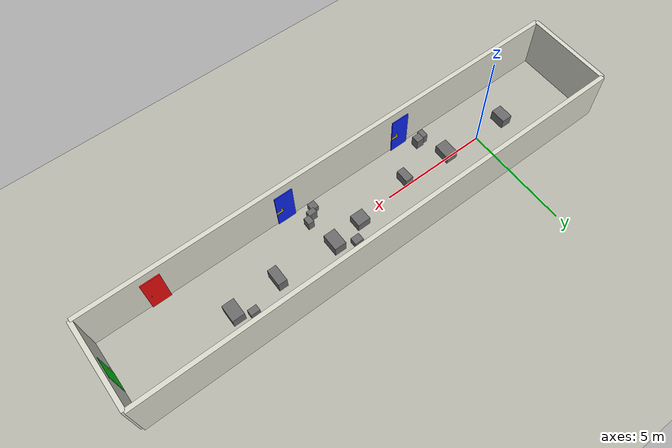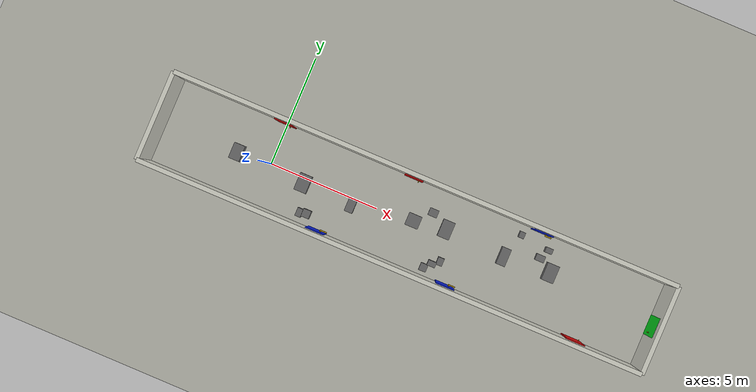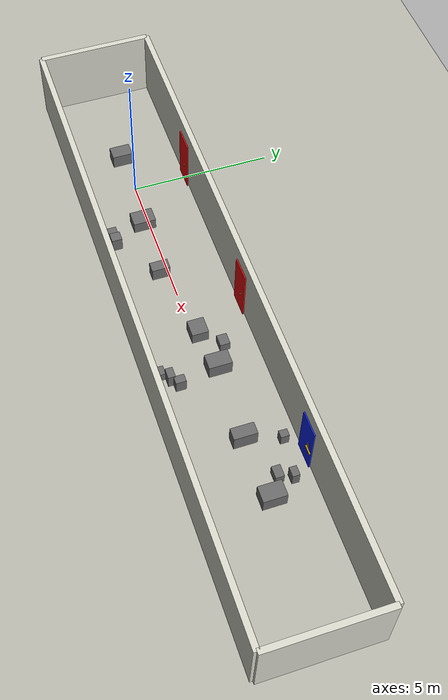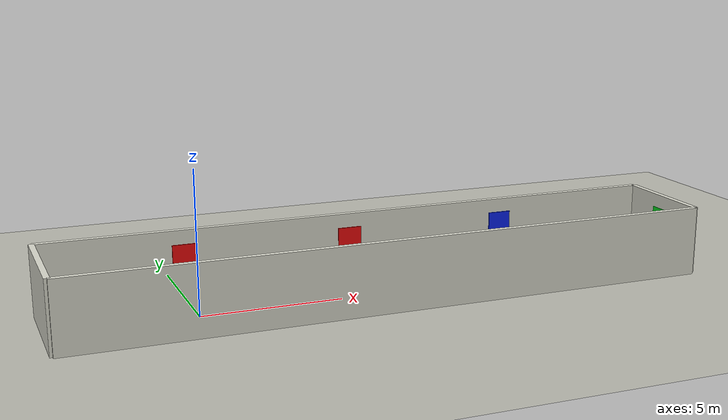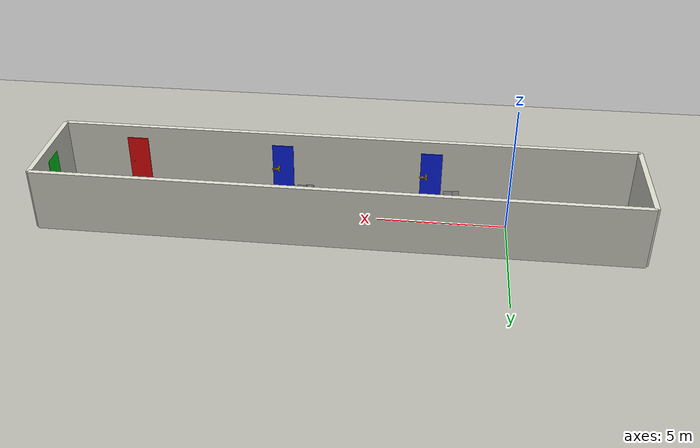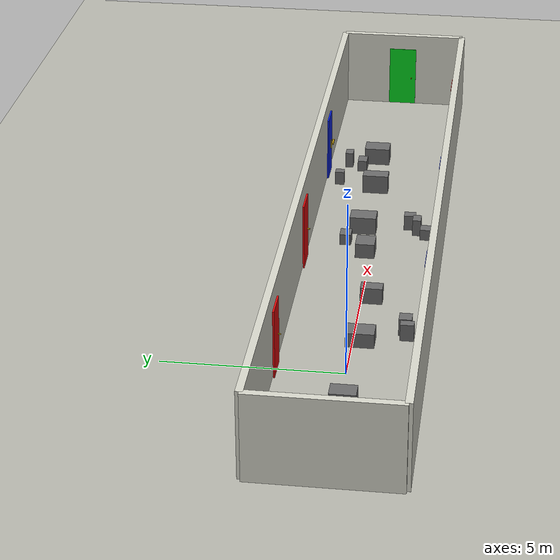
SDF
<?xml version="1.0" ?>
<sdf version="1.6">
  <world name="fire_corridor">
    <physics name="default_physics" type="ode">
      <max_step_size>0.001</max_step_size>
      <real_time_update_rate>1000</real_time_update_rate>
    </physics>
    <plugin name="gz::sim::systems::Physics" filename="gz-sim-physics-system"/>
    <plugin name="gz::sim::systems::UserCommands" filename="gz-sim-user-commands-system"/>
    <plugin name="gz::sim::systems::SceneBroadcaster" filename="gz-sim-scene-broadcaster-system"/>
    <plugin name="gz::sim::systems::Sensors" filename="gz-sim-sensors-system"><render_engine>ogre</render_engine></plugin>
    <light type="directional" name="sun">
      <cast_shadows>true</cast_shadows>
      <pose>6 0 10 0 0 0</pose>
      <diffuse>0.9 0.9 0.9 1</diffuse>
      <specular>0.3 0.3 0.3 1</specular>
      <direction>-0.5 0.1 -1</direction>
    </light>
    <light type="point" name="light_mid">
      <pose>8 0 2.8 0 0 0</pose>
      <diffuse>0.8 0.8 0.8 1</diffuse>
      <specular>0.1 0.1 0.1 1</specular>
      <attenuation><range>16</range><linear>0.05</linear></attenuation>
    </light>

    <model name="ground_plane">
      <static>true</static>
      <link name="link">
        <collision name="col"><geometry><plane><normal>0 0 1</normal><size>30 10</size></plane></geometry></collision>
        <visual name="vis"><geometry><plane><normal>0 0 1</normal><size>30 10</size></plane></geometry>
          <material><ambient>0.72 0.72 0.68 1</ambient><diffuse>0.72 0.72 0.68 1</diffuse></material>
        </visual>
      </link>
    </model>

    <model name="wall_south"><static>true</static><pose>6.5 -2 1.25 0 0 0</pose><link name="link">
      <collision name="col"><geometry><box><size>23 0.2 2.5</size></box></geometry></collision>
      <visual name="vis"><geometry><box><size>23 0.2 2.5</size></box></geometry><material><ambient>0.85 0.85 0.80 1</ambient><diffuse>0.85 0.85 0.80 1</diffuse></material></visual>
    </link></model>
    <model name="wall_north"><static>true</static><pose>6.5 2 1.25 0 0 0</pose><link name="link">
      <collision name="col"><geometry><box><size>23 0.2 2.5</size></box></geometry></collision>
      <visual name="vis"><geometry><box><size>23 0.2 2.5</size></box></geometry><material><ambient>0.85 0.85 0.80 1</ambient><diffuse>0.85 0.85 0.80 1</diffuse></material></visual>
    </link></model>
    <model name="wall_west"><static>true</static><pose>-5 0 1.25 0 0 0</pose><link name="link">
      <collision name="col"><geometry><box><size>0.2 4 2.5</size></box></geometry></collision>
      <visual name="vis"><geometry><box><size>0.2 4 2.5</size></box></geometry><material><ambient>0.85 0.85 0.80 1</ambient><diffuse>0.85 0.85 0.80 1</diffuse></material></visual>
    </link></model>
    <model name="wall_east"><static>true</static><pose>18 0 1.25 0 0 0</pose><link name="link">
      <collision name="col"><geometry><box><size>0.2 4 2.5</size></box></geometry></collision>
      <visual name="vis"><geometry><box><size>0.2 4 2.5</size></box></geometry><material><ambient>0.85 0.85 0.80 1</ambient><diffuse>0.85 0.85 0.80 1</diffuse></material></visual>
    </link></model>

    <model name="door_red1">
      <static>true</static>
      <pose>0.00 1.86 1.0 0 0 0</pose>
      <link name="link">
        <visual name="panel">
          <geometry><box><size>0.85 0.045 2.0</size></box></geometry>
          <material><ambient>0.92 0.04 0.04 1</ambient><diffuse>0.92 0.04 0.04 1</diffuse></material>
        </visual>
      </link>
    </model>
    <model name="handle_red1">
      <static>true</static>
      <pose>0.24 1.82 0.95 1.5708 0 0</pose>
      <link name="link">
        <visual name="handle"><geometry><cylinder><radius>0.018</radius><length>0.13</length></cylinder></geometry><material><ambient>0.75 0.60 0.05 1</ambient><diffuse>0.75 0.60 0.05 1</diffuse></material></visual>
      </link>
    </model>
    <model name="door_blue1">
      <static>false</static>
      <pose>3 -1.86 1 0 0 0</pose>
      <link name="panel">
        <inertial>
          <mass>2.0</mass>
          <inertia>
            <ixx>0.90</ixx><ixy>0</ixy><ixz>0</ixz>
            <iyy>0.90</iyy><iyz>0</iyz><izz>0.12</izz>
          </inertia>
        </inertial>
        <collision name="panel_collision">
          <geometry><box><size>0.85 0.045 2</size></box></geometry>
          <surface>
            <friction><ode><mu>0.8</mu><mu2>0.8</mu2></ode></friction>
          </surface>
        </collision>
        <visual name="panel">
          <geometry><box><size>0.85 0.045 2</size></box></geometry>
          <material><ambient>0.04 0.14 0.92 1</ambient><diffuse>0.04 0.14 0.92 1</diffuse></material>
        </visual>
        <collision name="handle_collision">
<pose>0.3 0.074 -0.05 0 0 0</pose>
<geometry><box><size>0.32 0.07 0.055</size></box></geometry>
        </collision>
        <visual name="handle_backplate">
<pose>0.18 0.032 -0.05 0 0 0</pose>
<geometry><box><size>0.08 0.022 0.28</size></box></geometry>
<material><ambient>0.75 0.60 0.05 1</ambient><diffuse>0.75 0.60 0.05 1</diffuse></material>
        </visual>
        <visual name="handle">
<pose>0.3 0.078 -0.05 0 0 0</pose>
<geometry><box><size>0.32 0.052 0.052</size></box></geometry>
<material><ambient>0.75 0.60 0.05 1</ambient><diffuse>0.75 0.60 0.05 1</diffuse></material>
        </visual>
      </link>
      <joint name="hinge" type="revolute">
        <pose>-0.425 0 0 0 0 0</pose>
        <parent>world</parent>
        <child>panel</child>
        <axis>
          <xyz>0 0 1</xyz>
          <limit><lower>-2.10</lower><upper>2.10</upper><effort>40</effort><velocity>1.5</velocity></limit>
          <dynamics><damping>1.0</damping><friction>0.05</friction></dynamics>
        </axis>
      </joint>
      <plugin filename="ignition-gazebo-joint-position-controller-system"
              name="gz::sim::systems::JointPositionController">
        <joint_name>hinge</joint_name>
        <topic>/fire_robot/door/blue/x300/yn186/sp/cmd</topic>
        <p_gain>8.0</p_gain>
        <d_gain>0.4</d_gain>
        <cmd_max>60</cmd_max>
        <cmd_min>-60</cmd_min>
      </plugin>
    </model>
    <model name="door_red2">
      <static>true</static>
      <pose>6.00 1.86 1.0 0 0 0</pose>
      <link name="link">
        <visual name="panel">
          <geometry><box><size>0.85 0.045 2.0</size></box></geometry>
          <material><ambient>0.92 0.04 0.04 1</ambient><diffuse>0.92 0.04 0.04 1</diffuse></material>
        </visual>
      </link>
    </model>
    <model name="handle_red2">
      <static>true</static>
      <pose>6.24 1.82 0.95 1.5708 0 0</pose>
      <link name="link">
        <visual name="handle"><geometry><cylinder><radius>0.018</radius><length>0.13</length></cylinder></geometry><material><ambient>0.75 0.60 0.05 1</ambient><diffuse>0.75 0.60 0.05 1</diffuse></material></visual>
      </link>
    </model>
    <model name="door_blue2">
      <static>false</static>
      <pose>9 -1.86 1 0 0 0</pose>
      <link name="panel">
        <inertial>
          <mass>2.0</mass>
          <inertia>
            <ixx>0.90</ixx><ixy>0</ixy><ixz>0</ixz>
            <iyy>0.90</iyy><iyz>0</iyz><izz>0.12</izz>
          </inertia>
        </inertial>
        <collision name="panel_collision">
          <geometry><box><size>0.85 0.045 2</size></box></geometry>
          <surface>
            <friction><ode><mu>0.8</mu><mu2>0.8</mu2></ode></friction>
          </surface>
        </collision>
        <visual name="panel">
          <geometry><box><size>0.85 0.045 2</size></box></geometry>
          <material><ambient>0.04 0.14 0.92 1</ambient><diffuse>0.04 0.14 0.92 1</diffuse></material>
        </visual>
        <collision name="handle_collision">
<pose>0.3 0.074 -0.05 0 0 0</pose>
<geometry><box><size>0.32 0.07 0.055</size></box></geometry>
        </collision>
        <visual name="handle_backplate">
<pose>0.18 0.032 -0.05 0 0 0</pose>
<geometry><box><size>0.08 0.022 0.28</size></box></geometry>
<material><ambient>0.75 0.60 0.05 1</ambient><diffuse>0.75 0.60 0.05 1</diffuse></material>
        </visual>
        <visual name="handle">
<pose>0.3 0.078 -0.05 0 0 0</pose>
<geometry><box><size>0.32 0.052 0.052</size></box></geometry>
<material><ambient>0.75 0.60 0.05 1</ambient><diffuse>0.75 0.60 0.05 1</diffuse></material>
        </visual>
      </link>
      <joint name="hinge" type="revolute">
        <pose>-0.425 0 0 0 0 0</pose>
        <parent>world</parent>
        <child>panel</child>
        <axis>
          <xyz>0 0 1</xyz>
          <limit><lower>-2.10</lower><upper>2.10</upper><effort>40</effort><velocity>1.5</velocity></limit>
          <dynamics><damping>1.0</damping><friction>0.05</friction></dynamics>
        </axis>
      </joint>
      <plugin filename="ignition-gazebo-joint-position-controller-system"
              name="gz::sim::systems::JointPositionController">
        <joint_name>hinge</joint_name>
        <topic>/fire_robot/door/blue/x900/yn186/sp/cmd</topic>
        <p_gain>8.0</p_gain>
        <d_gain>0.4</d_gain>
        <cmd_max>60</cmd_max>
        <cmd_min>-60</cmd_min>
      </plugin>
    </model>
    <model name="door_blue3">
      <static>false</static>
      <pose>12 1.86 1 0 0 0</pose>
      <link name="panel">
        <inertial>
          <mass>2.0</mass>
          <inertia>
            <ixx>0.90</ixx><ixy>0</ixy><ixz>0</ixz>
            <iyy>0.90</iyy><iyz>0</iyz><izz>0.12</izz>
          </inertia>
        </inertial>
        <collision name="panel_collision">
          <geometry><box><size>0.85 0.045 2</size></box></geometry>
          <surface>
            <friction><ode><mu>0.8</mu><mu2>0.8</mu2></ode></friction>
          </surface>
        </collision>
        <visual name="panel">
          <geometry><box><size>0.85 0.045 2</size></box></geometry>
          <material><ambient>0.04 0.14 0.92 1</ambient><diffuse>0.04 0.14 0.92 1</diffuse></material>
        </visual>
        <collision name="handle_collision">
<pose>0.3 -0.074 -0.05 0 0 0</pose>
<geometry><box><size>0.32 0.07 0.055</size></box></geometry>
        </collision>
        <visual name="handle_backplate">
<pose>0.18 -0.032 -0.05 0 0 0</pose>
<geometry><box><size>0.08 0.022 0.28</size></box></geometry>
<material><ambient>0.75 0.60 0.05 1</ambient><diffuse>0.75 0.60 0.05 1</diffuse></material>
        </visual>
        <visual name="handle">
<pose>0.3 -0.078 -0.05 0 0 0</pose>
<geometry><box><size>0.32 0.052 0.052</size></box></geometry>
<material><ambient>0.75 0.60 0.05 1</ambient><diffuse>0.75 0.60 0.05 1</diffuse></material>
        </visual>
      </link>
      <joint name="hinge" type="revolute">
        <pose>-0.425 0 0 0 0 0</pose>
        <parent>world</parent>
        <child>panel</child>
        <axis>
          <xyz>0 0 1</xyz>
          <limit><lower>-2.10</lower><upper>2.10</upper><effort>40</effort><velocity>1.5</velocity></limit>
          <dynamics><damping>1.0</damping><friction>0.05</friction></dynamics>
        </axis>
      </joint>
      <plugin filename="ignition-gazebo-joint-position-controller-system"
              name="gz::sim::systems::JointPositionController">
        <joint_name>hinge</joint_name>
        <topic>/fire_robot/door/blue/x1200/yp186/sn/cmd</topic>
        <p_gain>8.0</p_gain>
        <d_gain>0.4</d_gain>
        <cmd_max>60</cmd_max>
        <cmd_min>-60</cmd_min>
      </plugin>
    </model>
    <model name="door_red3">
      <static>true</static>
      <pose>15.00 -1.86 1.0 0 0 0</pose>
      <link name="link">
        <visual name="panel">
          <geometry><box><size>0.85 0.045 2.0</size></box></geometry>
          <material><ambient>0.92 0.04 0.04 1</ambient><diffuse>0.92 0.04 0.04 1</diffuse></material>
        </visual>
      </link>
    </model>
    <model name="handle_red3">
      <static>true</static>
      <pose>15.24 -1.82 0.95 1.5708 0 0</pose>
      <link name="link">
        <visual name="handle"><geometry><cylinder><radius>0.018</radius><length>0.13</length></cylinder></geometry><material><ambient>0.75 0.60 0.05 1</ambient><diffuse>0.75 0.60 0.05 1</diffuse></material></visual>
      </link>
    </model>
    <model name="exit_green">
      <static>true</static>
      <pose>17.92 0 1.0 0 0 0</pose>
      <link name="link">
        <visual name="panel">
          <geometry><box><size>0.06 0.9 2.0</size></box></geometry>
          <material><ambient>0.02 0.85 0.12 1</ambient><diffuse>0.02 0.85 0.12 1</diffuse></material>
        </visual>
      </link>
    </model>
    <model name="handle_exit">
      <static>true</static>
      <pose>17.88 -0.30 0.95 0 1.5708 0</pose>
      <link name="link">
        <visual name="handle"><geometry><cylinder><radius>0.018</radius><length>0.13</length></cylinder></geometry><material><ambient>0.75 0.60 0.05 1</ambient><diffuse>0.75 0.60 0.05 1</diffuse></material></visual>
      </link>
    </model>
    <model name="rand_303_center_00">
      <static>true</static>
      <pose>-1.53 -0.09 0.25 0 0 0</pose>
      <link name="link">
        <collision name="col"><geometry><box><size>0.50 0.72 0.51</size></box></geometry></collision>
        <visual name="vis">
          <geometry><box><size>0.50 0.72 0.51</size></box></geometry>
          <material><ambient>0.42 0.42 0.42 1</ambient><diffuse>0.42 0.42 0.42 1</diffuse></material>
        </visual>
      </link>
    </model>
    <model name="rand_303_center_01">
      <static>true</static>
      <pose>1.64 -0.21 0.21 0 0 0</pose>
      <link name="link">
        <collision name="col"><geometry><box><size>0.56 0.79 0.43</size></box></geometry></collision>
        <visual name="vis">
          <geometry><box><size>0.56 0.79 0.43</size></box></geometry>
          <material><ambient>0.42 0.42 0.42 1</ambient><diffuse>0.42 0.42 0.42 1</diffuse></material>
        </visual>
      </link>
    </model>
    <model name="rand_303_center_02">
      <static>true</static>
      <pose>3.93 -0.29 0.24 0 0 0</pose>
      <link name="link">
        <collision name="col"><geometry><box><size>0.37 0.63 0.49</size></box></geometry></collision>
        <visual name="vis">
          <geometry><box><size>0.37 0.63 0.49</size></box></geometry>
          <material><ambient>0.42 0.42 0.42 1</ambient><diffuse>0.42 0.42 0.42 1</diffuse></material>
        </visual>
      </link>
    </model>
    <model name="rand_303_center_03">
      <static>true</static>
      <pose>6.70 0.16 0.22 0 0 0</pose>
      <link name="link">
        <collision name="col"><geometry><box><size>0.60 0.57 0.45</size></box></geometry></collision>
        <visual name="vis">
          <geometry><box><size>0.60 0.57 0.45</size></box></geometry>
          <material><ambient>0.42 0.42 0.42 1</ambient><diffuse>0.42 0.42 0.42 1</diffuse></material>
        </visual>
      </link>
    </model>
    <model name="rand_303_center_04">
      <static>true</static>
      <pose>8.16 0.37 0.27 0 0 0</pose>
      <link name="link">
        <collision name="col"><geometry><box><size>0.54 0.79 0.54</size></box></geometry></collision>
        <visual name="vis">
          <geometry><box><size>0.54 0.79 0.54</size></box></geometry>
          <material><ambient>0.42 0.42 0.42 1</ambient><diffuse>0.42 0.42 0.42 1</diffuse></material>
        </visual>
      </link>
    </model>
    <model name="rand_303_center_05">
      <static>true</static>
      <pose>10.91 0.26 0.29 0 0 0</pose>
      <link name="link">
        <collision name="col"><geometry><box><size>0.41 0.79 0.59</size></box></geometry></collision>
        <visual name="vis">
          <geometry><box><size>0.41 0.79 0.59</size></box></geometry>
          <material><ambient>0.42 0.42 0.42 1</ambient><diffuse>0.42 0.42 0.42 1</diffuse></material>
        </visual>
      </link>
    </model>
    <model name="rand_303_center_06">
      <static>true</static>
      <pose>13.06 0.40 0.27 0 0 0</pose>
      <link name="link">
        <collision name="col"><geometry><box><size>0.55 0.79 0.54</size></box></geometry></collision>
        <visual name="vis">
          <geometry><box><size>0.55 0.79 0.54</size></box></geometry>
          <material><ambient>0.42 0.42 0.42 1</ambient><diffuse>0.42 0.42 0.42 1</diffuse></material>
        </visual>
      </link>
    </model>
    <model name="rand_303_blue_clutter_0_0">
      <static>true</static>
      <pose>1.98 -1.45 0.25 0 0 0</pose>
      <link name="link">
        <collision name="col"><geometry><box><size>0.25 0.38 0.50</size></box></geometry></collision>
        <visual name="vis">
          <geometry><box><size>0.25 0.38 0.50</size></box></geometry>
          <material><ambient>0.42 0.42 0.42 1</ambient><diffuse>0.42 0.42 0.42 1</diffuse></material>
        </visual>
      </link>
    </model>
    <model name="rand_303_blue_clutter_0_1">
      <static>true</static>
      <pose>2.29 -1.38 0.26 0 0 0</pose>
      <link name="link">
        <collision name="col"><geometry><box><size>0.36 0.36 0.52</size></box></geometry></collision>
        <visual name="vis">
          <geometry><box><size>0.36 0.36 0.52</size></box></geometry>
          <material><ambient>0.42 0.42 0.42 1</ambient><diffuse>0.42 0.42 0.42 1</diffuse></material>
        </visual>
      </link>
    </model>
    <model name="rand_303_blue_clutter_1_0">
      <static>true</static>
      <pose>8.16 -1.25 0.26 0 0 0</pose>
      <link name="link">
        <collision name="col"><geometry><box><size>0.37 0.25 0.51</size></box></geometry></collision>
        <visual name="vis">
          <geometry><box><size>0.37 0.25 0.51</size></box></geometry>
          <material><ambient>0.42 0.42 0.42 1</ambient><diffuse>0.42 0.42 0.42 1</diffuse></material>
        </visual>
      </link>
    </model>
    <model name="rand_303_blue_clutter_1_1">
      <static>true</static>
      <pose>7.89 -1.54 0.17 0 0 0</pose>
      <link name="link">
        <collision name="col"><geometry><box><size>0.33 0.34 0.34</size></box></geometry></collision>
        <visual name="vis">
          <geometry><box><size>0.33 0.34 0.34</size></box></geometry>
          <material><ambient>0.42 0.42 0.42 1</ambient><diffuse>0.42 0.42 0.42 1</diffuse></material>
        </visual>
      </link>
    </model>
    <model name="rand_303_blue_clutter_2_0">
      <static>true</static>
      <pose>12.63 1.27 0.25 0 0 0</pose>
      <link name="link">
        <collision name="col"><geometry><box><size>0.33 0.24 0.49</size></box></geometry></collision>
        <visual name="vis">
          <geometry><box><size>0.33 0.24 0.49</size></box></geometry>
          <material><ambient>0.42 0.42 0.42 1</ambient><diffuse>0.42 0.42 0.42 1</diffuse></material>
        </visual>
      </link>
    </model>
    <model name="rand_303_blue_clutter_2_1">
      <static>true</static>
      <pose>11.29 1.44 0.22 0 0 0</pose>
      <link name="link">
        <collision name="col"><geometry><box><size>0.25 0.28 0.43</size></box></geometry></collision>
        <visual name="vis">
          <geometry><box><size>0.25 0.28 0.43</size></box></geometry>
          <material><ambient>0.42 0.42 0.42 1</ambient><diffuse>0.42 0.42 0.42 1</diffuse></material>
        </visual>
      </link>
    </model>
    <model name="rand_303_side_00">
      <static>true</static>
      <pose>12.42 0.82 0.18 0 0 0</pose>
      <link name="link">
        <collision name="col"><geometry><box><size>0.41 0.29 0.36</size></box></geometry></collision>
        <visual name="vis">
          <geometry><box><size>0.41 0.29 0.36</size></box></geometry>
          <material><ambient>0.42 0.42 0.42 1</ambient><diffuse>0.42 0.42 0.42 1</diffuse></material>
        </visual>
      </link>
    </model>
    <model name="rand_303_side_01">
      <static>true</static>
      <pose>8.46 -1.02 0.24 0 0 0</pose>
      <link name="link">
        <collision name="col"><geometry><box><size>0.28 0.35 0.48</size></box></geometry></collision>
        <visual name="vis">
          <geometry><box><size>0.28 0.35 0.48</size></box></geometry>
          <material><ambient>0.42 0.42 0.42 1</ambient><diffuse>0.42 0.42 0.42 1</diffuse></material>
        </visual>
      </link>
    </model>
    <model name="rand_303_side_02">
      <static>true</static>
      <pose>7.37 0.82 0.16 0 0 0</pose>
      <link name="link">
        <collision name="col"><geometry><box><size>0.41 0.34 0.33</size></box></geometry></collision>
        <visual name="vis">
          <geometry><box><size>0.41 0.34 0.33</size></box></geometry>
          <material><ambient>0.42 0.42 0.42 1</ambient><diffuse>0.42 0.42 0.42 1</diffuse></material>
        </visual>
      </link>
    </model>
  </world>
</sdf>
